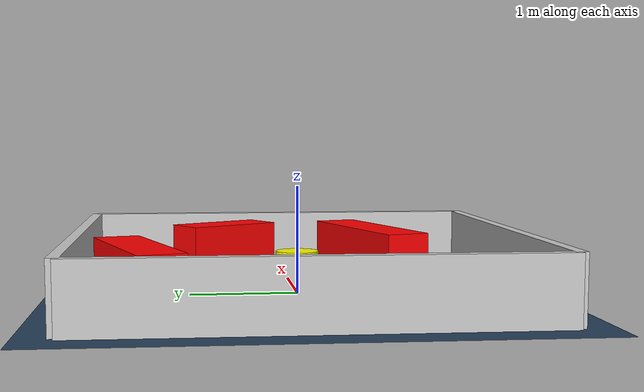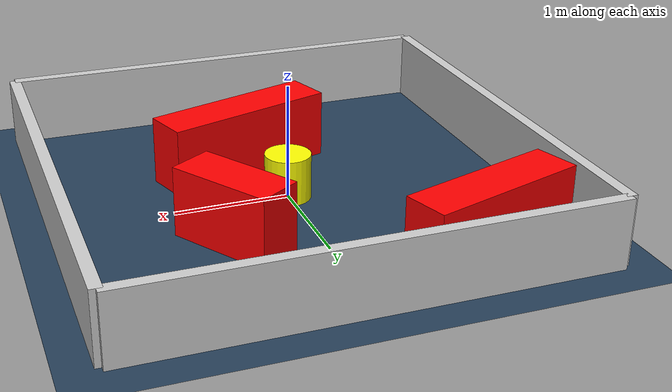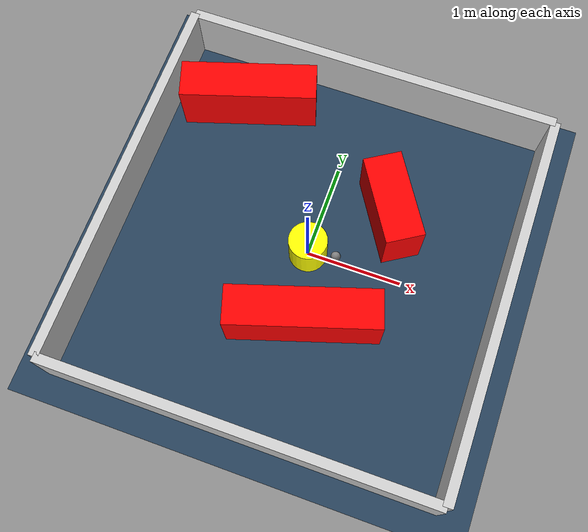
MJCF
<?xml version="1.0" ?>
<mujoco model="generated_environment">
  <option timestep="0.01" integrator="RK4" cone="elliptic"/>
  <default>
    <geom density="1"/>
  </default>
  <asset>
    <texture builtin="gradient" height="3072" rgb1="0.3 0.5 0.7" rgb2="0 0 0" type="skybox" width="512"/>
    <texture builtin="checker" height="300" mark="edge" markrgb="0.8 0.8 0.8" name="groundplane" rgb1="0.2 0.3 0.4" rgb2="0.1 0.2 0.3" type="2d" width="300"/>
    <material name="groundplane" reflectance="0.2" texrepeat="5 5" texture="groundplane" texuniform="true"/>
    <material name="robot" rgba="0.0 1.0 0.0 1"/>
  </asset>
  <worldbody>
    <light dir="0 0 -1" directional="true" pos="0 0 1.5"/>
    <geom condim="4" friction="1.0 0.005 0.001" material="groundplane" name="floor" size="0 0 0.05" type="plane"/>
    <body name="walls">
      <geom name="wall_1" condim="4" pos="-2.0 0.0 0.3" rgba="0.800000011920929 0.800000011920929 0.800000011920929 1.0" size="0.05 2.0 0.3" type="box"/>
      <geom name="wall_2" condim="4" pos="2.0 0.0 0.3" rgba="0.800000011920929 0.800000011920929 0.800000011920929 1.0" size="0.05 2.0 0.3" type="box"/>
      <geom name="wall_3" condim="4" pos="0.0 -2.0 0.3" rgba="0.800000011920929 0.800000011920929 0.800000011920929 1.0" size="2.0 0.05 0.3" type="box"/>
      <geom name="wall_4" condim="4" pos="0.0 2.0 0.3" rgba="0.800000011920929 0.800000011920929 0.800000011920929 1.0" size="2.0 0.05 0.3" type="box"/>
    </body>
    <body name="robot">
      <joint name="joint_x" type="slide" pos="0 0 0" axis="1 0 0"/>
      <joint name="joint_y" type="slide" pos="0 0 0" axis="0 1 0"/>
      <geom name="robot" type="sphere" pos="0.3 0.0 0.2" size="0.05" mass="5." friction="1.0 0.005 0.0001" condim="4" rgba="0.5 0.5 0.5 1.0"/>
      <site name="sensor_ball"/>
    </body>
    <body name="obstacle_movable_1">
      <geom name="obstacle_movable_1" condim="4" pos="0.0 0.0 0.2" euler="0 0 0.0" friction="1.0 0.005 0.001" rgba="1.0 1.0 0.0 1.0" size="0.2 0.2 0.0" type="cylinder" mass="0.1"/>
      <joint type="free"/>
    </body>
    <body name="obstacle_2_static">
      <geom name="obstacle_2_static" condim="4" pos="-1.1643898687996344 1.4160445057579703 0.3" euler="0 0 17.583267900320728" friction="1.0 0.005 0.001" rgba="1 0 0 1" size="0.7167469233993204 0.2 0.3" type="box"/>
    </body>
    <body name="obstacle_3_static">
      <geom name="obstacle_3_static" condim="4" pos="0.6735028982530205 0.6566175610199319 0.3" euler="0 0 302.2287739748736" friction="1.0 0.005 0.001" rgba="1 0 0 1" size="0.46277404962868507 0.2 0.3" type="box"/>
    </body>
    <body name="obstacle_4_static">
      <geom name="obstacle_4_static" condim="4" pos="0.20360967548326747 -0.7130014169056029 0.3" euler="0 0 197.57818705880118" friction="1.0 0.005 0.001" rgba="1 0 0 1" size="0.7715867142690187 0.2 0.3" type="box"/>
    </body>
  </worldbody>
  <actuator>
    <motor name="actuator_x" joint="joint_x" gear="1" ctrlrange="-1 1"/>
    <motor name="actuator_y" joint="joint_y" gear="1" ctrlrange="-1 1"/>
  </actuator>
</mujoco>
